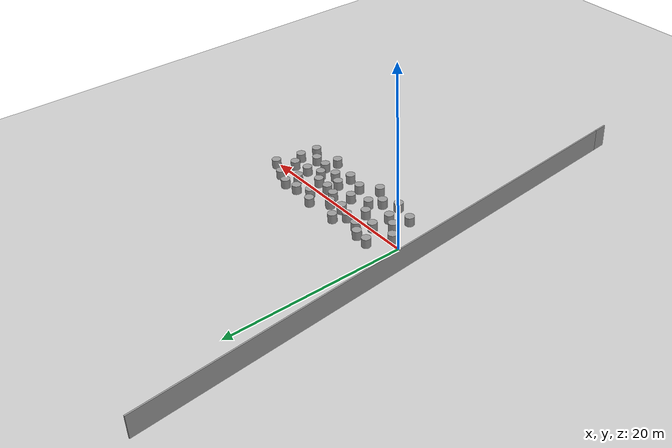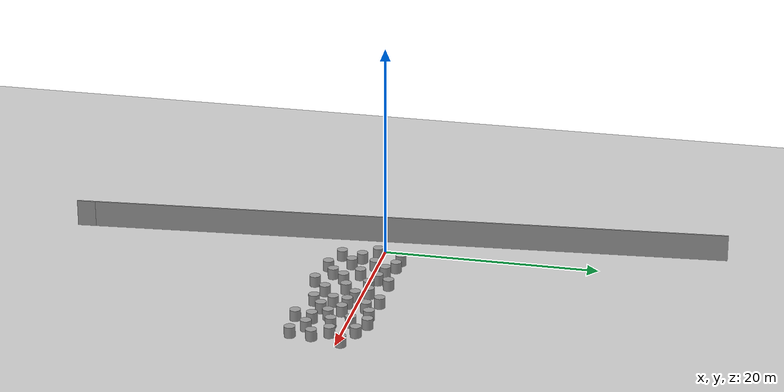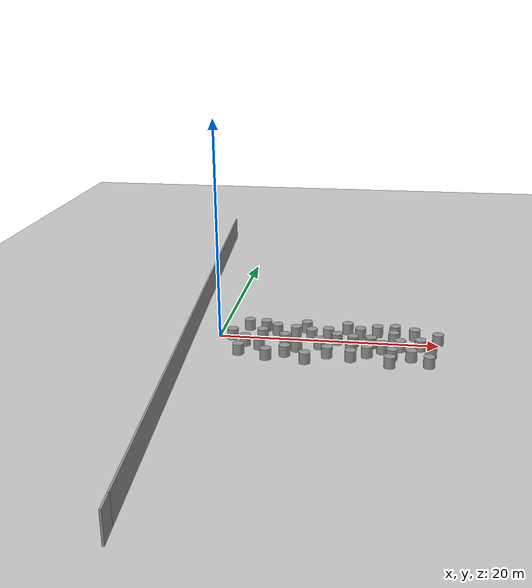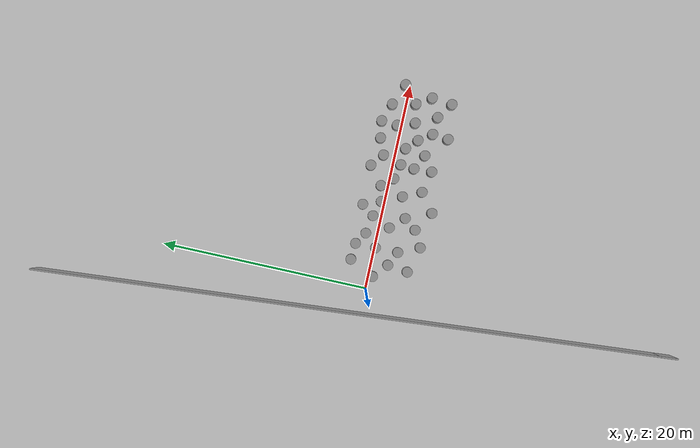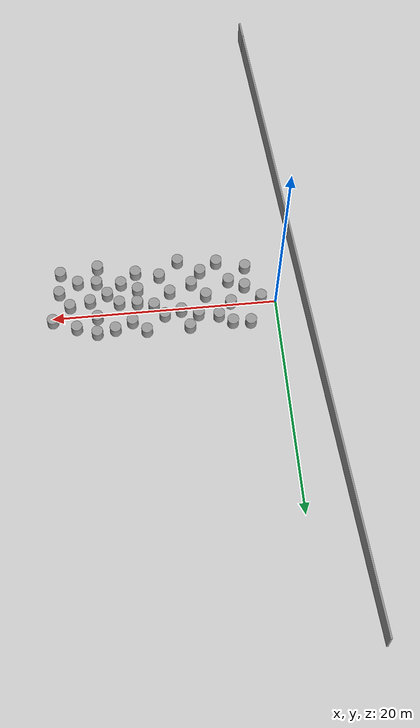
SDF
<sdf version="1.6">
 <world name="default">
  <model name="ground_plane">
   <static>1</static>
   <link name="link">
    <collision name="collision">
     <geometry><plane><normal>0 0 1</normal><size>100 100</size></plane></geometry>
     <surface>
      <contact><collide_bitmask>65535</collide_bitmask></contact>
      <friction><ode><mu>100</mu><mu2>50</mu2></ode></friction>
     </surface>
    </collision>
    <visual name="visual">
     <cast_shadows>0</cast_shadows>
     <geometry><plane><normal>0 0 1</normal><size>100 100</size></plane></geometry>
     <material>
      <script><uri>file://media/materials/scripts/gazebo.material</uri><name>Gazebo/Grey</name></script>
     </material>
    </visual>
   </link>
  </model>
  <model name="Diff_Drive">
   <pose>0.000154 -0.00016 0.039504 1e-06 -1.6e-05 3.13063</pose>
   <scale>1 1 1</scale>
   <link name="base_link">
    <pose>0.000154 -0.00016 0.039504 1e-06 -1.6e-05 3.13063</pose>
    <velocity>-2e-06 -4e-06 3.7e-05 0.000274 7e-06 -2e-05</velocity>
    <acceleration>0.008487 0.007294 0.061926 0.355061 0.270652 -0.001067</acceleration>
    <wrench>0.042433 0.036472 0.30963 0 -0 0</wrench>
   </link>
   <link name="left_back_wheel">
    <pose>0.05689 -0.115789 0.054504 -1e-05 -0.000817 3.13063</pose>
    <velocity>-3e-06 -7e-06 7e-06 0.000132 -6.2e-05 -1.2e-05</velocity>
    <acceleration>0.012798 0.003351 0.00655 -0.061481 0.234798 -0.000376</acceleration>
    <wrench>0.005119 0.001341 0.00262 0 -0 0</wrench>
   </link>
   <link name="left_front_wheel">
    <pose>-0.063103 -0.114473 0.054505 -5e-06 0.002052 3.13063</pose>
    <velocity>-3e-06 -6e-06 9e-06 0.000104 -6e-05 -1.4e-05</velocity>
    <acceleration>0.012453 0.003827 0.008266 -0.070254 0.228461 -0.002923</acceleration>
    <wrench>0.004981 0.001531 0.003306 0 -0 0</wrench>
   </link>
   <link name="right_back_wheel">
    <pose>0.059412 0.114198 0.054503 -9e-06 -0.000101 3.13063</pose>
    <velocity>1e-06 -7e-06 -1e-06 0.000135 1.8e-05 -1.9e-05</velocity>
    <acceleration>0.01452 0.005318 -0.010001 -0.097649 0.266476 0.005489</acceleration>
    <wrench>0.005808 0.002127 -0.004 0 -0 0</wrench>
   </link>
   <link name="right_front_wheel">
    <pose>-0.060581 0.115513 0.054505 -1.4e-05 0.002309 3.13063</pose>
    <velocity>2e-06 2e-06 0.000144 -3.6e-05 3e-05 -1.1e-05</velocity>
    <acceleration>0.014736 0.01729 0.273658 -0.316925 0.275458 0.014368</acceleration>
    <wrench>0.005894 0.006916 0.109463 0 -0 0</wrench>
   </link>
  </model>
  <model name="unit_cylinder">
   <pose>6.99929 0.832209 0.499994 -4e-06 -3e-06 -0</pose>
   <link name="link">
    <inertial>
     <mass>1</mass>
     <inertia><ixx>0.145833</ixx><ixy>0</ixy><ixz>0</ixz><iyy>0.145833</iyy><iyz>0</iyz><izz>0.125</izz></inertia>
    </inertial>
    <collision name="collision">
     <geometry><cylinder><radius>0.5</radius><length>1</length></cylinder></geometry>
    </collision>
    <visual name="visual">
     <geometry><cylinder><radius>0.5</radius><length>1</length></cylinder></geometry>
     <material>
      <script><name>Gazebo/Grey</name><uri>file://media/materials/scripts/gazebo.material</uri></script>
     </material>
    </visual>
   </link>
  </model>
  <model name="unit_cylinder_0">
   <pose>4.06146 -2.25804 0.499998 3e-06 -2e-06 0</pose>
   <link name="link">
    <inertial>
     <mass>1</mass>
     <inertia><ixx>0.145833</ixx><ixy>0</ixy><ixz>0</ixz><iyy>0.145833</iyy><iyz>0</iyz><izz>0.125</izz></inertia>
    </inertial>
    <collision name="collision">
     <geometry><cylinder><radius>0.5</radius><length>1</length></cylinder></geometry>
    </collision>
    <visual name="visual">
     <geometry><cylinder><radius>0.5</radius><length>1</length></cylinder></geometry>
     <material>
      <script><name>Gazebo/Grey</name><uri>file://media/materials/scripts/gazebo.material</uri></script>
     </material>
    </visual>
   </link>
  </model>
  <model name="unit_cylinder_1">
   <pose>11.6938 2.06939 0.499998 3e-06 -2e-06 0</pose>
   <link name="link">
    <inertial>
     <mass>1</mass>
     <inertia><ixx>0.145833</ixx><ixy>0</ixy><ixz>0</ixz><iyy>0.145833</iyy><iyz>0</iyz><izz>0.125</izz></inertia>
    </inertial>
    <collision name="collision">
     <geometry><cylinder><radius>0.5</radius><length>1</length></cylinder></geometry>
    </collision>
    <visual name="visual">
     <geometry><cylinder><radius>0.5</radius><length>1</length></cylinder></geometry>
     <material>
      <script><name>Gazebo/Grey</name><uri>file://media/materials/scripts/gazebo.material</uri></script>
     </material>
    </visual>
   </link>
  </model>
  <model name="unit_cylinder_2">
   <pose>9.38691 -1.54603 0.499998 3e-06 -2e-06 0</pose>
   <link name="link">
    <inertial>
     <mass>1</mass>
     <inertia><ixx>0.145833</ixx><ixy>0</ixy><ixz>0</ixz><iyy>0.145833</iyy><iyz>0</iyz><izz>0.125</izz></inertia>
    </inertial>
    <collision name="collision">
     <geometry><cylinder><radius>0.5</radius><length>1</length></cylinder></geometry>
    </collision>
    <visual name="visual">
     <geometry><cylinder><radius>0.5</radius><length>1</length></cylinder></geometry>
     <material>
      <script><name>Gazebo/Grey</name><uri>file://media/materials/scripts/gazebo.material</uri></script>
     </material>
    </visual>
   </link>
  </model>
  <model name="unit_cylinder_3">
   <pose>15.6885 -4.63383 0.499998 3e-06 -2e-06 0</pose>
   <link name="link">
    <inertial>
     <mass>1</mass>
     <inertia><ixx>0.145833</ixx><ixy>0</ixy><ixz>0</ixz><iyy>0.145833</iyy><iyz>0</iyz><izz>0.125</izz></inertia>
    </inertial>
    <collision name="collision">
     <geometry><cylinder><radius>0.5</radius><length>1</length></cylinder></geometry>
    </collision>
    <visual name="visual">
     <geometry><cylinder><radius>0.5</radius><length>1</length></cylinder></geometry>
     <material>
      <script><name>Gazebo/Grey</name><uri>file://media/materials/scripts/gazebo.material</uri></script>
     </material>
    </visual>
   </link>
  </model>
  <model name="unit_cylinder_4">
   <pose>15.969 0.435377 0.499998 3e-06 -2e-06 0</pose>
   <link name="link">
    <inertial>
     <mass>1</mass>
     <inertia><ixx>0.145833</ixx><ixy>0</ixy><ixz>0</ixz><iyy>0.145833</iyy><iyz>0</iyz><izz>0.125</izz></inertia>
    </inertial>
    <collision name="collision">
     <geometry><cylinder><radius>0.5</radius><length>1</length></cylinder></geometry>
    </collision>
    <visual name="visual">
     <geometry><cylinder><radius>0.5</radius><length>1</length></cylinder></geometry>
     <material>
      <script><name>Gazebo/Grey</name><uri>file://media/materials/scripts/gazebo.material</uri></script>
     </material>
    </visual>
   </link>
  </model>
  <model name="unit_cylinder_13">
   <pose>12.3468 -0.72397 0.499993 -4e-06 -2e-06 -0</pose>
   <link name="link">
    <inertial>
     <mass>1</mass>
     <inertia><ixx>0.145833</ixx><ixy>0</ixy><ixz>0</ixz><iyy>0.145833</iyy><iyz>0</iyz><izz>0.125</izz></inertia>
    </inertial>
    <collision name="collision">
     <geometry><cylinder><radius>0.5</radius><length>1</length></cylinder></geometry>
    </collision>
    <visual name="visual">
     <geometry><cylinder><radius>0.5</radius><length>1</length></cylinder></geometry>
     <material>
      <script><name>Gazebo/Grey</name><uri>file://media/materials/scripts/gazebo.material</uri></script>
     </material>
    </visual>
   </link>
  </model>
  <model name="unit_cylinder_31">
   <pose>10.2116 -3.2923 0.499992 -3e-06 2e-06 0</pose>
   <link name="link">
    <inertial>
     <mass>1</mass>
     <inertia><ixx>0.145833</ixx><ixy>0</ixy><ixz>0</ixz><iyy>0.145833</iyy><iyz>0</iyz><izz>0.125</izz></inertia>
    </inertial>
    <collision name="collision">
     <geometry><cylinder><radius>0.5</radius><length>1</length></cylinder></geometry>
    </collision>
    <visual name="visual">
     <geometry><cylinder><radius>0.5</radius><length>1</length></cylinder></geometry>
     <material>
      <script><name>Gazebo/Grey</name><uri>file://media/materials/scripts/gazebo.material</uri></script>
     </material>
    </visual>
   </link>
  </model>
  <model name="wall_up02_1">
   <pose>-2.45978 0.60731 0 0 -0 1.64986</pose>
   <link name="Wall_0">
    <collision name="Wall_0_Collision">
     <geometry><box><size>60 0.15 2.5</size></box></geometry>
     <pose>0 0 1.25 0 -0 0</pose>
    </collision>
    <visual name="Wall_0_Visual">
     <pose>0 0 1.25 0 -0 0</pose>
     <geometry><box><size>60 0.15 2.5</size></box></geometry>
     <material>
      <script><uri>file://media/materials/scripts/gazebo.material</uri><name>Gazebo/Grey</name></script>
      <ambient>1 1 1 1</ambient>
     </material>
     <meta><layer>0</layer></meta>
    </visual>
    <pose>0.799999 0 0 0 -0 3.14159</pose>
   </link>
   <link name="Wall_1">
    <collision name="Wall_1_Collision">
     <geometry><box><size>1.75 0.15 2.5</size></box></geometry>
     <pose>0 0 1.25 0 -0 0</pose>
    </collision>
    <visual name="Wall_1_Visual">
     <pose>0 0 1.25 0 -0 0</pose>
     <geometry><box><size>1.75 0.15 2.5</size></box></geometry>
     <material>
      <script><uri>file://media/materials/scripts/gazebo.material</uri><name>Gazebo/Grey</name></script>
      <ambient>0 0 0 1</ambient>
     </material>
     <meta><layer>0</layer></meta>
    </visual>
    <pose>-29.925 0 0 0 -0 3.14159</pose>
   </link>
   <static>1</static>
  </model>
  <model name="unit_cylinder_32">
   <pose>2.42276 -3.5512 0.499998 3e-06 -2e-06 0</pose>
   <link name="link">
    <inertial>
     <mass>1</mass>
     <inertia><ixx>0.145833</ixx><ixy>0</ixy><ixz>0</ixz><iyy>0.145833</iyy><iyz>0</iyz><izz>0.125</izz></inertia>
    </inertial>
    <collision name="collision">
     <geometry><cylinder><radius>0.5</radius><length>1</length></cylinder></geometry>
    </collision>
    <visual name="visual">
     <geometry><cylinder><radius>0.5</radius><length>1</length></cylinder></geometry>
     <material>
      <script><name>Gazebo/Grey</name><uri>file://media/materials/scripts/gazebo.material</uri></script>
     </material>
    </visual>
   </link>
  </model>
  <model name="unit_cylinder_33">
   <pose>4.0393 -0.07105 0.499998 3e-06 -2e-06 0</pose>
   <link name="link">
    <inertial>
     <mass>1</mass>
     <inertia><ixx>0.145833</ixx><ixy>0</ixy><ixz>0</ixz><iyy>0.145833</iyy><iyz>0</iyz><izz>0.125</izz></inertia>
    </inertial>
    <collision name="collision">
     <geometry><cylinder><radius>0.5</radius><length>1</length></cylinder></geometry>
    </collision>
    <visual name="visual">
     <geometry><cylinder><radius>0.5</radius><length>1</length></cylinder></geometry>
     <material>
      <script><name>Gazebo/Grey</name><uri>file://media/materials/scripts/gazebo.material</uri></script>
     </material>
    </visual>
   </link>
  </model>
  <model name="unit_cylinder_34">
   <pose>2.46949 1.99363 0.499994 -4e-06 -3e-06 -0</pose>
   <link name="link">
    <inertial>
     <mass>1</mass>
     <inertia><ixx>0.145833</ixx><ixy>0</ixy><ixz>0</ixz><iyy>0.145833</iyy><iyz>0</iyz><izz>0.125</izz></inertia>
    </inertial>
    <collision name="collision">
     <geometry><cylinder><radius>0.5</radius><length>1</length></cylinder></geometry>
    </collision>
    <visual name="visual">
     <geometry><cylinder><radius>0.5</radius><length>1</length></cylinder></geometry>
     <material>
      <script><name>Gazebo/Grey</name><uri>file://media/materials/scripts/gazebo.material</uri></script>
     </material>
    </visual>
   </link>
  </model>
  <model name="unit_cylinder_35">
   <pose>7.86543 2.01658 0.499998 3e-06 -2e-06 0</pose>
   <link name="link">
    <inertial>
     <mass>1</mass>
     <inertia><ixx>0.145833</ixx><ixy>0</ixy><ixz>0</ixz><iyy>0.145833</iyy><iyz>0</iyz><izz>0.125</izz></inertia>
    </inertial>
    <collision name="collision">
     <geometry><cylinder><radius>0.5</radius><length>1</length></cylinder></geometry>
    </collision>
    <visual name="visual">
     <geometry><cylinder><radius>0.5</radius><length>1</length></cylinder></geometry>
     <material>
      <script><name>Gazebo/Grey</name><uri>file://media/materials/scripts/gazebo.material</uri></script>
     </material>
    </visual>
   </link>
  </model>
  <model name="unit_cylinder_36">
   <pose>6.51456 -3.42246 0.499994 -4e-06 -3e-06 -0</pose>
   <link name="link">
    <inertial>
     <mass>1</mass>
     <inertia><ixx>0.145833</ixx><ixy>0</ixy><ixz>0</ixz><iyy>0.145833</iyy><iyz>0</iyz><izz>0.125</izz></inertia>
    </inertial>
    <collision name="collision">
     <geometry><cylinder><radius>0.5</radius><length>1</length></cylinder></geometry>
    </collision>
    <visual name="visual">
     <geometry><cylinder><radius>0.5</radius><length>1</length></cylinder></geometry>
     <material>
      <script><name>Gazebo/Grey</name><uri>file://media/materials/scripts/gazebo.material</uri></script>
     </material>
    </visual>
   </link>
  </model>
  <model name="unit_cylinder_37">
   <pose>6.19796 -0.96 0.499998 3e-06 -2e-06 0</pose>
   <link name="link">
    <inertial>
     <mass>1</mass>
     <inertia><ixx>0.145833</ixx><ixy>0</ixy><ixz>0</ixz><iyy>0.145833</iyy><iyz>0</iyz><izz>0.125</izz></inertia>
    </inertial>
    <collision name="collision">
     <geometry><cylinder><radius>0.5</radius><length>1</length></cylinder></geometry>
    </collision>
    <visual name="visual">
     <geometry><cylinder><radius>0.5</radius><length>1</length></cylinder></geometry>
     <material>
      <script><name>Gazebo/Grey</name><uri>file://media/materials/scripts/gazebo.material</uri></script>
     </material>
    </visual>
   </link>
  </model>
  <model name="unit_cylinder_38">
   <pose>13.6872 -2.8073 0.499999 0 -0 0</pose>
   <link name="link">
    <inertial>
     <mass>1</mass>
     <inertia><ixx>0.145833</ixx><ixy>0</ixy><ixz>0</ixz><iyy>0.145833</iyy><iyz>0</iyz><izz>0.125</izz></inertia>
    </inertial>
    <collision name="collision">
     <geometry><cylinder><radius>0.5</radius><length>1</length></cylinder></geometry>
    </collision>
    <visual name="visual">
     <geometry><cylinder><radius>0.5</radius><length>1</length></cylinder></geometry>
     <material>
      <script><name>Gazebo/Grey</name><uri>file://media/materials/scripts/gazebo.material</uri></script>
     </material>
    </visual>
   </link>
  </model>
  <model name="unit_cylinder_39">
   <pose>12.2342 -2.05305 0.499992 -3e-06 2e-06 0</pose>
   <link name="link">
    <inertial>
     <mass>1</mass>
     <inertia><ixx>0.145833</ixx><ixy>0</ixy><ixz>0</ixz><iyy>0.145833</iyy><iyz>0</iyz><izz>0.125</izz></inertia>
    </inertial>
    <collision name="collision">
     <geometry><cylinder><radius>0.5</radius><length>1</length></cylinder></geometry>
    </collision>
    <visual name="visual">
     <geometry><cylinder><radius>0.5</radius><length>1</length></cylinder></geometry>
     <material>
      <script><name>Gazebo/Grey</name><uri>file://media/materials/scripts/gazebo.material</uri></script>
     </material>
    </visual>
   </link>
  </model>
  <model name="unit_cylinder_40">
   <pose>9.99238 0.699421 0.499993 -3e-06 2e-06 0</pose>
   <link name="link">
    <inertial>
     <mass>1</mass>
     <inertia><ixx>0.145833</ixx><ixy>0</ixy><ixz>0</ixz><iyy>0.145833</iyy><iyz>0</iyz><izz>0.125</izz></inertia>
    </inertial>
    <collision name="collision">
     <geometry><cylinder><radius>0.5</radius><length>1</length></cylinder></geometry>
    </collision>
    <visual name="visual">
     <geometry><cylinder><radius>0.5</radius><length>1</length></cylinder></geometry>
     <material>
      <script><name>Gazebo/Grey</name><uri>file://media/materials/scripts/gazebo.material</uri></script>
     </material>
    </visual>
   </link>
  </model>
  <model name="unit_cylinder_41">
   <pose>16.0707 1.97233 0.499998 3e-06 -3e-06 0</pose>
   <link name="link">
    <inertial>
     <mass>1</mass>
     <inertia><ixx>0.145833</ixx><ixy>0</ixy><ixz>0</ixz><iyy>0.145833</iyy><iyz>0</iyz><izz>0.125</izz></inertia>
    </inertial>
    <collision name="collision">
     <geometry><cylinder><radius>0.5</radius><length>1</length></cylinder></geometry>
    </collision>
    <visual name="visual">
     <geometry><cylinder><radius>0.5</radius><length>1</length></cylinder></geometry>
     <material>
      <script><name>Gazebo/Grey</name><uri>file://media/materials/scripts/gazebo.material</uri></script>
     </material>
    </visual>
   </link>
  </model>
  <model name="unit_cylinder_42">
   <pose>18.3381 -0.893437 0.499998 3e-06 -3e-06 0</pose>
   <link name="link">
    <inertial>
     <mass>1</mass>
     <inertia><ixx>0.145833</ixx><ixy>0</ixy><ixz>0</ixz><iyy>0.145833</iyy><iyz>0</iyz><izz>0.125</izz></inertia>
    </inertial>
    <collision name="collision">
     <geometry><cylinder><radius>0.5</radius><length>1</length></cylinder></geometry>
    </collision>
    <visual name="visual">
     <geometry><cylinder><radius>0.5</radius><length>1</length></cylinder></geometry>
     <material>
      <script><name>Gazebo/Grey</name><uri>file://media/materials/scripts/gazebo.material</uri></script>
     </material>
    </visual>
   </link>
  </model>
  <model name="unit_cylinder_43">
   <pose>19.9313 0.472077 0.499998 3e-06 -3e-06 0</pose>
   <link name="link">
    <inertial>
     <mass>1</mass>
     <inertia><ixx>0.145833</ixx><ixy>0</ixy><ixz>0</ixz><iyy>0.145833</iyy><iyz>0</iyz><izz>0.125</izz></inertia>
    </inertial>
    <collision name="collision">
     <geometry><cylinder><radius>0.5</radius><length>1</length></cylinder></geometry>
    </collision>
    <visual name="visual">
     <geometry><cylinder><radius>0.5</radius><length>1</length></cylinder></geometry>
     <material>
      <script><name>Gazebo/Grey</name><uri>file://media/materials/scripts/gazebo.material</uri></script>
     </material>
    </visual>
   </link>
  </model>
  <model name="unit_cylinder_53">
   <pose>4.96385 -4.25942 0.499992 -3e-06 3e-06 0</pose>
   <link name="link">
    <inertial>
     <mass>1</mass>
     <inertia><ixx>0.145833</ixx><ixy>0</ixy><ixz>0</ixz><iyy>0.145833</iyy><iyz>0</iyz><izz>0.125</izz></inertia>
    </inertial>
    <collision name="collision">
     <geometry><cylinder><radius>0.5</radius><length>1</length></cylinder></geometry>
    </collision>
    <visual name="visual">
     <geometry><cylinder><radius>0.5</radius><length>1</length></cylinder></geometry>
     <material>
      <script><name>Gazebo/Grey</name><uri>file://media/materials/scripts/gazebo.material</uri></script>
     </material>
    </visual>
   </link>
  </model>
  <model name="unit_cylinder_54">
   <pose>1.29721 -0.388281 0.499992 -3e-06 3e-06 0</pose>
   <link name="link">
    <inertial>
     <mass>1</mass>
     <inertia><ixx>0.145833</ixx><ixy>0</ixy><ixz>0</ixz><iyy>0.145833</iyy><iyz>0</iyz><izz>0.125</izz></inertia>
    </inertial>
    <collision name="collision">
     <geometry><cylinder><radius>0.5</radius><length>1</length></cylinder></geometry>
    </collision>
    <visual name="visual">
     <geometry><cylinder><radius>0.5</radius><length>1</length></cylinder></geometry>
     <material>
      <script><name>Gazebo/Grey</name><uri>file://media/materials/scripts/gazebo.material</uri></script>
     </material>
    </visual>
   </link>
  </model>
  <model name="unit_cylinder_55">
   <pose>8.43822 -4.65171 0.499998 3e-06 -3e-06 0</pose>
   <link name="link">
    <inertial>
     <mass>1</mass>
     <inertia><ixx>0.145833</ixx><ixy>0</ixy><ixz>0</ixz><iyy>0.145833</iyy><iyz>0</iyz><izz>0.125</izz></inertia>
    </inertial>
    <collision name="collision">
     <geometry><cylinder><radius>0.5</radius><length>1</length></cylinder></geometry>
    </collision>
    <visual name="visual">
     <geometry><cylinder><radius>0.5</radius><length>1</length></cylinder></geometry>
     <material>
      <script><name>Gazebo/Grey</name><uri>file://media/materials/scripts/gazebo.material</uri></script>
     </material>
    </visual>
   </link>
  </model>
  <model name="unit_cylinder_56">
   <pose>12.9038 1.09735 0.499998 3e-06 4e-06 -0</pose>
   <link name="link">
    <inertial>
     <mass>1</mass>
     <inertia><ixx>0.145833</ixx><ixy>0</ixy><ixz>0</ixz><iyy>0.145833</iyy><iyz>0</iyz><izz>0.125</izz></inertia>
    </inertial>
    <collision name="collision">
     <geometry><cylinder><radius>0.5</radius><length>1</length></cylinder></geometry>
    </collision>
    <visual name="visual">
     <geometry><cylinder><radius>0.5</radius><length>1</length></cylinder></geometry>
     <material>
      <script><name>Gazebo/Grey</name><uri>file://media/materials/scripts/gazebo.material</uri></script>
     </material>
    </visual>
   </link>
  </model>
  <model name="unit_cylinder_57">
   <pose>14.9718 -1.83779 0.499998 3e-06 4e-06 -0</pose>
   <link name="link">
    <inertial>
     <mass>1</mass>
     <inertia><ixx>0.145833</ixx><ixy>0</ixy><ixz>0</ixz><iyy>0.145833</iyy><iyz>0</iyz><izz>0.125</izz></inertia>
    </inertial>
    <collision name="collision">
     <geometry><cylinder><radius>0.5</radius><length>1</length></cylinder></geometry>
    </collision>
    <visual name="visual">
     <geometry><cylinder><radius>0.5</radius><length>1</length></cylinder></geometry>
     <material>
      <script><name>Gazebo/Grey</name><uri>file://media/materials/scripts/gazebo.material</uri></script>
     </material>
    </visual>
   </link>
  </model>
  <model name="unit_cylinder_58">
   <pose>12.3108 -3.7773 0.499998 3e-06 4e-06 -0</pose>
   <link name="link">
    <inertial>
     <mass>1</mass>
     <inertia><ixx>0.145833</ixx><ixy>0</ixy><ixz>0</ixz><iyy>0.145833</iyy><iyz>0</iyz><izz>0.125</izz></inertia>
    </inertial>
    <collision name="collision">
     <geometry><cylinder><radius>0.5</radius><length>1</length></cylinder></geometry>
    </collision>
    <visual name="visual">
     <geometry><cylinder><radius>0.5</radius><length>1</length></cylinder></geometry>
     <material>
      <script><name>Gazebo/Grey</name><uri>file://media/materials/scripts/gazebo.material</uri></script>
     </material>
    </visual>
   </link>
  </model>
  <model name="unit_cylinder_59">
   <pose>7.40503 -2.25633 0.499998 3e-06 4e-06 -0</pose>
   <link name="link">
    <inertial>
     <mass>1</mass>
     <inertia><ixx>0.145833</ixx><ixy>0</ixy><ixz>0</ixz><iyy>0.145833</iyy><iyz>0</iyz><izz>0.125</izz></inertia>
    </inertial>
    <collision name="collision">
     <geometry><cylinder><radius>0.5</radius><length>1</length></cylinder></geometry>
    </collision>
    <visual name="visual">
     <geometry><cylinder><radius>0.5</radius><length>1</length></cylinder></geometry>
     <material>
      <script><name>Gazebo/Grey</name><uri>file://media/materials/scripts/gazebo.material</uri></script>
     </material>
    </visual>
   </link>
  </model>
  <model name="unit_cylinder_60">
   <pose>17.5274 -3.20794 0.499993 -3e-06 -3e-06 0</pose>
   <link name="link">
    <inertial>
     <mass>1</mass>
     <inertia><ixx>0.145833</ixx><ixy>0</ixy><ixz>0</ixz><iyy>0.145833</iyy><iyz>0</iyz><izz>0.125</izz></inertia>
    </inertial>
    <collision name="collision">
     <geometry><cylinder><radius>0.5</radius><length>1</length></cylinder></geometry>
    </collision>
    <visual name="visual">
     <geometry><cylinder><radius>0.5</radius><length>1</length></cylinder></geometry>
     <material>
      <script><name>Gazebo/Grey</name><uri>file://media/materials/scripts/gazebo.material</uri></script>
     </material>
    </visual>
   </link>
  </model>
  <model name="unit_cylinder_62">
   <pose>17.8474 1.325 0.499993 -3e-06 -3e-06 0</pose>
   <link name="link">
    <inertial>
     <mass>1</mass>
     <inertia><ixx>0.145833</ixx><ixy>0</ixy><ixz>0</ixz><iyy>0.145833</iyy><iyz>0</iyz><izz>0.125</izz></inertia>
    </inertial>
    <collision name="collision">
     <geometry><cylinder><radius>0.5</radius><length>1</length></cylinder></geometry>
    </collision>
    <visual name="visual">
     <geometry><cylinder><radius>0.5</radius><length>1</length></cylinder></geometry>
     <material>
      <script><name>Gazebo/Grey</name><uri>file://media/materials/scripts/gazebo.material</uri></script>
     </material>
    </visual>
   </link>
  </model>
  <model name="unit_cylinder_65">
   <pose>10.8872 -0.359234 0.499993 -3e-06 -4e-06 -0</pose>
   <link name="link">
    <inertial>
     <mass>1</mass>
     <inertia><ixx>0.145833</ixx><ixy>0</ixy><ixz>0</ixz><iyy>0.145833</iyy><iyz>0</iyz><izz>0.125</izz></inertia>
    </inertial>
    <collision name="collision">
     <geometry><cylinder><radius>0.5</radius><length>1</length></cylinder></geometry>
    </collision>
    <visual name="visual">
     <geometry><cylinder><radius>0.5</radius><length>1</length></cylinder></geometry>
     <material>
      <script><name>Gazebo/Grey</name><uri>file://media/materials/scripts/gazebo.material</uri></script>
     </material>
    </visual>
   </link>
  </model>
  <model name="unit_cylinder_66">
   <pose>13.952 -0.84442 0.499993 -3e-06 -4e-06 -0</pose>
   <link name="link">
    <inertial>
     <mass>1</mass>
     <inertia><ixx>0.145833</ixx><ixy>0</ixy><ixz>0</ixz><iyy>0.145833</iyy><iyz>0</iyz><izz>0.125</izz></inertia>
    </inertial>
    <collision name="collision">
     <geometry><cylinder><radius>0.5</radius><length>1</length></cylinder></geometry>
    </collision>
    <visual name="visual">
     <geometry><cylinder><radius>0.5</radius><length>1</length></cylinder></geometry>
     <material>
      <script><name>Gazebo/Grey</name><uri>file://media/materials/scripts/gazebo.material</uri></script>
     </material>
    </visual>
   </link>
  </model>
  <model name="unit_cylinder_67">
   <pose>14.4509 1.72355 0.499993 -3e-06 -4e-06 -0</pose>
   <link name="link">
    <inertial>
     <mass>1</mass>
     <inertia><ixx>0.145833</ixx><ixy>0</ixy><ixz>0</ixz><iyy>0.145833</iyy><iyz>0</iyz><izz>0.125</izz></inertia>
    </inertial>
    <collision name="collision">
     <geometry><cylinder><radius>0.5</radius><length>1</length></cylinder></geometry>
    </collision>
    <visual name="visual">
     <geometry><cylinder><radius>0.5</radius><length>1</length></cylinder></geometry>
     <material>
      <script><name>Gazebo/Grey</name><uri>file://media/materials/scripts/gazebo.material</uri></script>
     </material>
    </visual>
   </link>
  </model>
  <model name="unit_cylinder_68">
   <pose>8.50384 0.347204 0.499997 3e-06 4e-06 -0</pose>
   <link name="link">
    <inertial>
     <mass>1</mass>
     <inertia><ixx>0.145833</ixx><ixy>0</ixy><ixz>0</ixz><iyy>0.145833</iyy><iyz>0</iyz><izz>0.125</izz></inertia>
    </inertial>
    <collision name="collision">
     <geometry><cylinder><radius>0.5</radius><length>1</length></cylinder></geometry>
    </collision>
    <visual name="visual">
     <geometry><cylinder><radius>0.5</radius><length>1</length></cylinder></geometry>
     <material>
      <script><name>Gazebo/Grey</name><uri>file://media/materials/scripts/gazebo.material</uri></script>
     </material>
    </visual>
   </link>
  </model>
  <model name="unit_cylinder_69">
   <pose>5.22097 1.13735 0.499997 3e-06 4e-06 -0</pose>
   <link name="link">
    <inertial>
     <mass>1</mass>
     <inertia><ixx>0.145833</ixx><ixy>0</ixy><ixz>0</ixz><iyy>0.145833</iyy><iyz>0</iyz><izz>0.125</izz></inertia>
    </inertial>
    <collision name="collision">
     <geometry><cylinder><radius>0.5</radius><length>1</length></cylinder></geometry>
    </collision>
    <visual name="visual">
     <geometry><cylinder><radius>0.5</radius><length>1</length></cylinder></geometry>
     <material>
      <script><name>Gazebo/Grey</name><uri>file://media/materials/scripts/gazebo.material</uri></script>
     </material>
    </visual>
   </link>
  </model>
  <model name="unit_cylinder_70">
   <pose>4.05287 1.88505 0.499993 -3e-06 -4e-06 -0</pose>
   <link name="link">
    <inertial>
     <mass>1</mass>
     <inertia><ixx>0.145833</ixx><ixy>0</ixy><ixz>0</ixz><iyy>0.145833</iyy><iyz>0</iyz><izz>0.125</izz></inertia>
    </inertial>
    <collision name="collision">
     <geometry><cylinder><radius>0.5</radius><length>1</length></cylinder></geometry>
    </collision>
    <visual name="visual">
     <geometry><cylinder><radius>0.5</radius><length>1</length></cylinder></geometry>
     <material>
      <script><name>Gazebo/Grey</name><uri>file://media/materials/scripts/gazebo.material</uri></script>
     </material>
    </visual>
   </link>
  </model>
  <model name="unit_cylinder_71">
   <pose>15.8505 -3.08555 0.499997 3e-06 4e-06 -0</pose>
   <link name="link">
    <inertial>
     <mass>1</mass>
     <inertia><ixx>0.145833</ixx><ixy>0</ixy><ixz>0</ixz><iyy>0.145833</iyy><iyz>0</iyz><izz>0.125</izz></inertia>
    </inertial>
    <collision name="collision">
     <geometry><cylinder><radius>0.5</radius><length>1</length></cylinder></geometry>
    </collision>
    <visual name="visual">
     <geometry><cylinder><radius>0.5</radius><length>1</length></cylinder></geometry>
     <material>
      <script><name>Gazebo/Grey</name><uri>file://media/materials/scripts/gazebo.material</uri></script>
     </material>
    </visual>
   </link>
  </model>
  <model name="unit_cylinder_72">
   <pose>16.5438 -1.22309 0.499993 -3e-06 -4e-06 -0</pose>
   <link name="link">
    <inertial>
     <mass>1</mass>
     <inertia><ixx>0.145833</ixx><ixy>0</ixy><ixz>0</ixz><iyy>0.145833</iyy><iyz>0</iyz><izz>0.125</izz></inertia>
    </inertial>
    <collision name="collision">
     <geometry><cylinder><radius>0.5</radius><length>1</length></cylinder></geometry>
    </collision>
    <visual name="visual">
     <geometry><cylinder><radius>0.5</radius><length>1</length></cylinder></geometry>
     <material>
      <script><name>Gazebo/Grey</name><uri>file://media/materials/scripts/gazebo.material</uri></script>
     </material>
    </visual>
   </link>
  </model>
  <model name="unit_cylinder_73">
   <pose>19.0345 -4.26986 0.499997 3e-06 4e-06 -0</pose>
   <link name="link">
    <inertial>
     <mass>1</mass>
     <inertia><ixx>0.145833</ixx><ixy>0</ixy><ixz>0</ixz><iyy>0.145833</iyy><iyz>0</iyz><izz>0.125</izz></inertia>
    </inertial>
    <collision name="collision">
     <geometry><cylinder><radius>0.5</radius><length>1</length></cylinder></geometry>
    </collision>
    <visual name="visual">
     <geometry><cylinder><radius>0.5</radius><length>1</length></cylinder></geometry>
     <material>
      <script><name>Gazebo/Grey</name><uri>file://media/materials/scripts/gazebo.material</uri></script>
     </material>
    </visual>
   </link>
  </model>
  <model name="unit_cylinder_74">
   <pose>19.2347 -2.29896 0.499997 3e-06 4e-06 -0</pose>
   <link name="link">
    <inertial>
     <mass>1</mass>
     <inertia><ixx>0.145833</ixx><ixy>0</ixy><ixz>0</ixz><iyy>0.145833</iyy><iyz>0</iyz><izz>0.125</izz></inertia>
    </inertial>
    <collision name="collision">
     <geometry><cylinder><radius>0.5</radius><length>1</length></cylinder></geometry>
    </collision>
    <visual name="visual">
     <geometry><cylinder><radius>0.5</radius><length>1</length></cylinder></geometry>
     <material>
      <script><name>Gazebo/Grey</name><uri>file://media/materials/scripts/gazebo.material</uri></script>
     </material>
    </visual>
   </link>
  </model>
  <model name="unit_cylinder_76">
   <pose>2.66501 -1.58938 0.499997 3e-06 4e-06 -0</pose>
   <link name="link">
    <inertial>
     <mass>1</mass>
     <inertia><ixx>0.145833</ixx><ixy>0</ixy><ixz>0</ixz><iyy>0.145833</iyy><iyz>0</iyz><izz>0.125</izz></inertia>
    </inertial>
    <collision name="collision">
     <geometry><cylinder><radius>0.5</radius><length>1</length></cylinder></geometry>
    </collision>
    <visual name="visual">
     <geometry><cylinder><radius>0.5</radius><length>1</length></cylinder></geometry>
     <material>
      <script><name>Gazebo/Grey</name><uri>file://media/materials/scripts/gazebo.material</uri></script>
     </material>
    </visual>
   </link>
  </model>
 </world>
</sdf>
